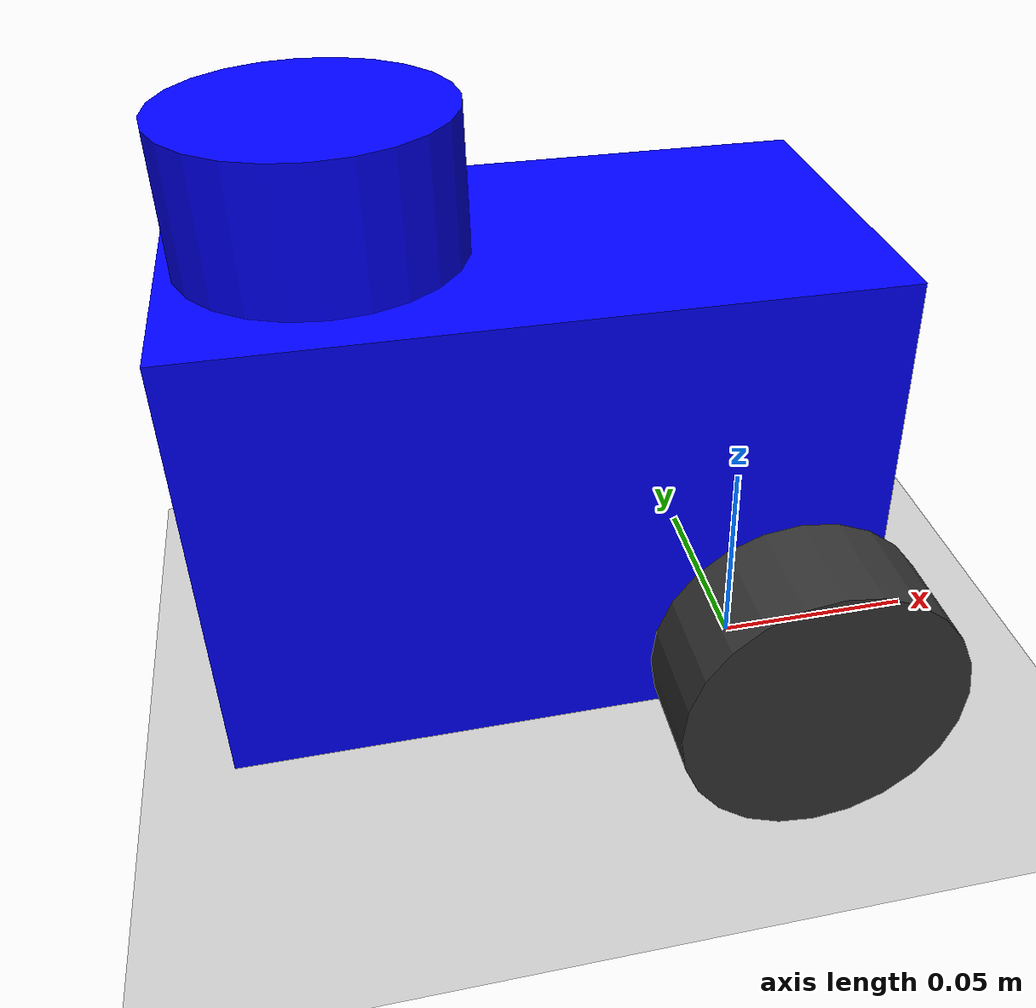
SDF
<?xml version="1.0" ?>
<sdf version="1.7">
  <world name="diff_drive">

    <physics name="1ms" type="ignored">
      <max_step_size>0.001</max_step_size>
      <real_time_factor>1.0</real_time_factor>
    </physics>
    <plugin
            filename="ignition-gazebo-physics-system"
            name="ignition::gazebo::systems::Physics">
    </plugin>
    <plugin
            filename="ignition-gazebo-user-commands-system"
            name="ignition::gazebo::systems::UserCommands">
    </plugin>
    <plugin
            filename="ignition-gazebo-scene-broadcaster-system"
            name="ignition::gazebo::systems::SceneBroadcaster">
    </plugin>
    <plugin filename="ignition-gazebo-imu-system"
            name="ignition::gazebo::systems::Imu">
    </plugin>
    <plugin
            filename="libignition-gazebo-sensors-system.so"
            name="ignition::gazebo::systems::Sensors">
      <render_engine>ogre2</render_engine>
    </plugin>

    <gui fullscreen="1">

      <!-- 3D scene -->
      <plugin filename="GzScene3D" name="3D View">
        <ignition-gui>
          <title>3D View</title>
          <property type="bool" key="showTitleBar">false</property>
          <property type="string" key="state">docked</property>
        </ignition-gui>

        <engine>ogre2</engine>
        <scene>scene</scene>
        <ambient_light>0.4 0.4 0.4</ambient_light>
        <background_color>0.8 0.8 0.8</background_color>
        <camera_pose>-1 0 1 0 0.5 0</camera_pose>
      </plugin>

      <!-- World control -->
      <plugin filename="WorldControl" name="World control">
        <ignition-gui>
          <title>World control</title>
          <property type="bool" key="showTitleBar">false</property>
          <property type="bool" key="resizable">false</property>
          <property type="double" key="height">72</property>
          <property type="double" key="width">121</property>
          <property type="double" key="z">1</property>

          <property type="string" key="state">floating</property>
          <anchors target="3D View">
            <line own="left" target="left"/>
            <line own="bottom" target="bottom"/>
          </anchors>
        </ignition-gui>

        <play_pause>true</play_pause>
        <step>true</step>
        <start_paused>true</start_paused>
        <service>/world/diff_drive/control</service>
        <stats_topic>/world/diff_drive/stats</stats_topic>
      </plugin>

      <!-- World statistics -->
      <plugin filename="WorldStats" name="World stats">
        <ignition-gui>
          <title>World stats</title>
          <property type="bool" key="showTitleBar">false</property>
          <property type="bool" key="resizable">false</property>
          <property type="double" key="height">110</property>
          <property type="double" key="width">290</property>
          <property type="double" key="z">1</property>

          <property type="string" key="state">floating</property>
          <anchors target="3D View">
            <line own="right" target="right"/>
            <line own="bottom" target="bottom"/>
          </anchors>
        </ignition-gui>

        <sim_time>true</sim_time>
        <real_time>true</real_time>
        <real_time_factor>true</real_time_factor>
        <iterations>true</iterations>
        <topic>/world/diff_drive/stats</topic>

      </plugin>

      <!-- Entity tree -->
      <plugin filename="EntityTree" name="Entity tree">
      </plugin>

    </gui>

    <light type="directional" name="sun">
      <cast_shadows>true</cast_shadows>
      <pose>0 0 10 0 0 0</pose>
      <diffuse>1 1 1 1</diffuse>
      <specular>0.5 0.5 0.5 1</specular>
      <attenuation>
        <range>1000</range>
        <constant>0.9</constant>
        <linear>0.01</linear>
        <quadratic>0.001</quadratic>
      </attenuation>
      <direction>-0.5 0.1 -0.9</direction>
    </light>

    <model name="ground_plane">
      <pose relative_to='world'>0 0 0 0 0 0</pose>

      <static>true</static>
      <link name="link">
        <collision name="collision">
          <geometry>
            <plane>
              <normal>0 0 1</normal>
              <size>100 100</size>
            </plane>
          </geometry>
        </collision>
        <visual name="visual">
          <geometry>
            <plane>
              <normal>0 0 1</normal>
              <size>100 100</size>
            </plane>
          </geometry>
          <material>
            <ambient>0.8 0.8 0.8 1</ambient>
            <diffuse>0.8 0.8 0.8 1</diffuse>
            <specular>0.8 0.8 0.8 1</specular>
          </material>
        </visual>
      </link>
    </model>

    <model name='duckiebot' canonical_link='chassis'>
      <pose relative_to='world'>0.0 0.0 0.0325 0 0 0</pose>

      <frame name="lidar_frame" attached_to='chassis'>
        <pose>-0.04 0 0.05 0 0 0</pose>
      </frame>

      <link name='chassis'>
        <pose relative_to='__model__'>-0.0525 0.0 0.0375 0 0 0</pose>
        <inertial>
          <mass>0.857</mass>
          <inertia>
            <ixx>0.0011712</ixx>
            <ixy>0</ixy>
            <ixz>0</ixz>
            <iyy>0.0022157</iyy>
            <iyz>0</iyz>
            <izz>0.0019586</izz>
          </inertia>
        </inertial>
        <visual name='visual'>
          <geometry>
            <box>
              <size>0.145 0.08 0.10</size>
            </box>
          </geometry>
          <material>
            <ambient>0.0 0.0 1.0 1</ambient>
            <diffuse>0.0 0.0 1.0 1</diffuse>
            <specular>0.0 0.0 1.0 1</specular>
          </material>
        </visual>
        <collision name='collision'>
          <geometry>
            <box>
              <size>0.145 0.08 0.10</size>
            </box>
          </geometry>
        </collision>
        <sensor name="imu_sensor" type="imu">
          <always_on>1</always_on>
          <update_rate>1</update_rate>
          <visualize>true</visualize>
          <topic>imu</topic>
        </sensor>
      </link>

      <link name='lidar'>
        <pose relative_to='lidar_frame'>0 0 0.015 0 0 0</pose>
        <inertial>
          <mass>0.1</mass>
          <inertia>
            <ixx>0.00003</ixx>
            <ixy>0</ixy>
            <ixz>0</ixz>
            <iyy>0.00003</iyy>
            <iyz>0</iyz>
            <izz>0.000045</izz>
          </inertia>
        </inertial>
        <visual name='visual'>
          <geometry>
            <cylinder>
              <radius>0.03</radius>
              <length>0.03</length>
            </cylinder>
          </geometry>
          <material>
            <ambient>0.0 0.0 1.0 1</ambient>
            <diffuse>0.0 0.0 1.0 1</diffuse>
            <specular>0.0 0.0 1.0 1</specular>
          </material>
        </visual>
        <collision name='collision'>
          <geometry>
            <cylinder>
              <radius>0.03</radius>
              <length>0.03</length>
            </cylinder>
          </geometry>
        </collision>
        <sensor name='gpu_lidar' type='gpu_lidar'>"
          <pose relative_to='lidar_frame'>0 0 0 0 0 0</pose>
          <topic>lidar</topic>
          <update_rate>10</update_rate>
          <ray>
            <scan>
              <horizontal>
                <samples>640</samples>
                <resolution>1</resolution>
                <min_angle>-1.396263</min_angle>
                <max_angle>1.396263</max_angle>
              </horizontal>
              <vertical>
                <samples>1</samples>
                <resolution>0.01</resolution>
                <min_angle>0</min_angle>
                <max_angle>0</max_angle>
              </vertical>
            </scan>
            <range>
              <min>0.08</min>
              <max>10.0</max>
              <resolution>0.01</resolution>
            </range>
          </ray>
          <always_on>1</always_on>
          <visualize>true</visualize>
        </sensor>
      </link>

      <link name='left_wheel'>
        <pose relative_to="__model__">0.0 0.0525 0.0 -1.5707 0 0</pose>
        <inertial>
          <mass>0.0326</mass>
          <inertia>
            <ixx>0.00003613</ixx>
            <ixy>0</ixy>
            <ixz>0</ixz>
            <iyy>0.00003613</iyy>
            <iyz>0</iyz>
            <izz>0.00006887</izz>
          </inertia>
        </inertial>
        <visual name='visual'>
          <geometry>
            <cylinder>
              <radius>0.0325</radius>
              <length>0.025</length>
            </cylinder>
          </geometry>
          <material>
            <ambient>0.2 0.2 0.2 1</ambient>
            <diffuse>0.2 0.2 0.2 1</diffuse>
            <specular>0.2 0.2 0.2 1</specular>
          </material>
        </visual>
        <collision name='collision'>
          <geometry>
            <cylinder>
              <radius>0.0325</radius>
              <length>0.025</length>
            </cylinder>
          </geometry>
        </collision>
      </link>

      <link name='right_wheel'>
        <pose relative_to="__model__">0.0 -0.0525 0.0 -1.5707 0 0</pose>
        <inertial>
          <mass>0.0326</mass>
          <inertia>
            <ixx>0.00003613</ixx>
            <ixy>0</ixy>
            <ixz>0</ixz>
            <iyy>0.00003613</iyy>
            <iyz>0</iyz>
            <izz>0.00006887</izz>
          </inertia>
        </inertial>
        <visual name='visual'>
          <geometry>
            <cylinder>
              <radius>0.0325</radius>
              <length>0.025</length>
            </cylinder>
          </geometry>
          <material>
            <ambient>0.2 0.2 0.2 1</ambient>
            <diffuse>0.2 0.2 0.2 1</diffuse>
            <specular>0.2 0.2 0.2 1</specular>
          </material>
        </visual>
        <collision name='collision'>
          <geometry>
            <cylinder>
              <radius>0.0325</radius>
              <length>0.025</length>
            </cylinder>
          </geometry>
        </collision>
      </link>

      <link name='caster'>
        <pose relative_to="chassis">-0.0375 0 -0.06 0 0 0</pose>
        <inertial>
          <mass>0.01</mass>
          <inertia>
            <ixx>0.0000004</ixx>
            <ixy>0</ixy>
            <ixz>0</ixz>
            <iyy>0.0000004</iyy>
            <iyz>0</iyz>
            <izz>0.0000004</izz>
          </inertia>
        </inertial>
        <visual name='visual'>
          <geometry>
            <sphere>
              <radius>0.01</radius>
            </sphere>
          </geometry>
          <material>
            <ambient>0.2 0.2 0.2 1</ambient>
            <diffuse>0.2 0.2 0.2 1</diffuse>
            <specular>0.2 0.2 0.2 1</specular>
          </material>
        </visual>
        <collision name='collision'>
          <geometry>
            <sphere>
              <radius>0.01</radius>
            </sphere>
          </geometry>
        </collision>
      </link>

      <joint name='lidar_joint' type='revolute'>
        <parent>chassis</parent>
        <child>lidar</child>
        <axis>
          <xyz>0 1 0</xyz>
          <limit>
            <lower>0</lower>
            <upper>0</upper>
          </limit>
        </axis>
      </joint>

      <joint name='left_wheel_joint' type='revolute'>
        <pose relative_to='left_wheel'/>
        <parent>chassis</parent>
        <child>left_wheel</child>
        <axis>
          <xyz expressed_in='__model__'>0 1 0</xyz>
          <limit>
            <lower>-1.79769e+308</lower>
            <upper>1.79769e+308</upper>
          </limit>
        </axis>
      </joint>

      <joint name='right_wheel_joint' type='revolute'>
        <pose relative_to='right_wheel'/>
        <parent>chassis</parent>
        <child>right_wheel</child>
        <axis>
          <xyz expressed_in='__model__'>0 1 0</xyz>
          <limit>
            <lower>-1.79769e+308</lower>
            <upper>1.79769e+308</upper>
          </limit>
        </axis>
      </joint>

      <joint name='caster_wheel' type='ball'>
        <parent>chassis</parent>
        <child>caster</child>
      </joint>

      <plugin
              filename="libignition-gazebo-diff-drive-system.so"
              name="ignition::gazebo::systems::DiffDrive">
        <left_joint>left_wheel_joint</left_joint>
        <right_joint>right_wheel_joint</right_joint>
        <wheel_separation>0.105</wheel_separation>
        <wheel_radius>0.0325</wheel_radius>
        <odom_publish_frequency>1</odom_publish_frequency>
        <topic>cmd_vel</topic>
      </plugin>

    </model>

  </world>
</sdf>
